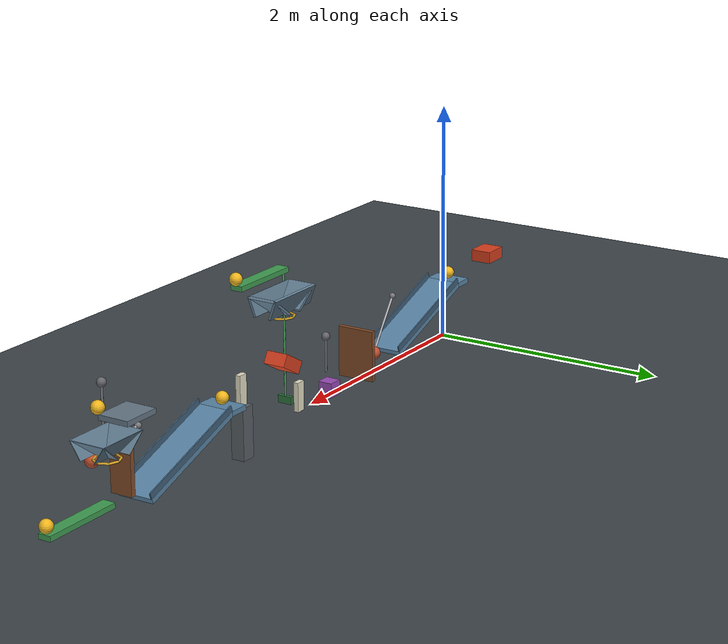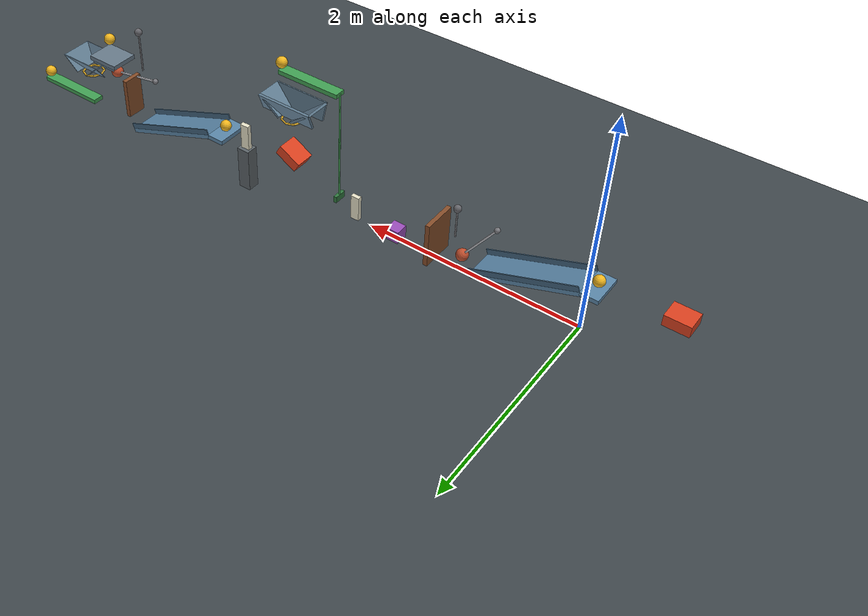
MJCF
<mujoco model="passive_chain_with_receiving_guides">
  <compiler angle="degree" autolimits="true"/>
  <option timestep="0.002" gravity="0 0 -9.81" integrator="implicitfast" cone="elliptic" iterations="150" o_solref="0.008 0.690107" o_solimp="0.95 0.95 0.001 0.5 2" o_friction="0.68 0.005 0.002">
    <flag override="enable"/>
  </option>
  <size nconmax="600" njmax="3000"/>
  <visual>
    <headlight ambient="0.45 0.45 0.45" diffuse="0.7 0.7 0.7" specular="0.15 0.15 0.15"/>
    <map znear="0.01" zfar="50"/>
  </visual>

  <!-- Unvalidated passive candidate: no motors, timed controls, or initial velocities. -->
  <!-- Sliding friction is 0.68. Six-dimensional contacts additionally enable rolling resistance. -->
  <!-- Restitution 0.05 is approximated by contact damping, not imposed as an exact impact law. -->
  <!-- Positive hinge rotation is clockwise when viewed along the listed hinge axis. -->
  <!-- Extra counterweights are separate named bodies coupled by ideal angular linkages. -->
  <!-- Passive assist springs are included on pendulum1, lever1, pendulum2, and seesaw1. -->
  <!-- The lever axle is diagonal in the horizontal plane to move ball2 clear of the beam. -->

  <worldbody>
    <light name="main_light" pos="3 -3 6" dir="0 0 -1"/>
    <camera name="overview" pos="3 -7 4" xyaxes="1 0 0 0 0.45 0.893"/>
    <geom name="floor" type="plane" size="10 5 0.1" condim="6" friction="0.68 0.005 0.002" rgba="0.24 0.27 0.29 1"/>

    <!-- Initial cart front to ball surface separation is 0.50 m. -->
    <body name="cart1" pos="-0.74 0 0.542020">
      <joint name="cart1_slide" type="slide" axis="1 0 0" range="0 0.65" damping="0.20" solreflimit="0.004 1"/>
      <geom name="cart1_box" type="box" size="0.11 0.09 0.05" mass="0.50" condim="6" friction="0.68 0.005 0.002" rgba="0.85 0.25 0.12 1"/>
    </body>

    <body name="ball1" pos="-0.08 0 0.542020">
      <freejoint name="ball1_free"/>
      <geom name="ball1_sphere" type="sphere" size="0.05" mass="0.20" condim="6" friction="0.68 0.005 0.002" rgba="0.95 0.72 0.12 1"/>
    </body>

    <!-- Deck upper surface: high end (0,0,0.492020), low end (0.939693,0,0.15). -->
    <body name="ramp1" pos="0 0 0">
      <geom name="ramp1_deck" type="box" pos="0.463006 0 0.302216" euler="0 20 0" size="0.50 0.15 0.02" condim="6" friction="0.68 0.005 0.002" rgba="0.35 0.52 0.65 1"/>
      <geom name="ramp1_start_platform" type="box" pos="-0.08 0 0.472020" size="0.08 0.15 0.02" condim="6" friction="0.68 0.005 0.002" rgba="0.35 0.52 0.65 1"/>
      <geom name="ramp1_rail_left" type="box" pos="0.478397 -0.145 0.344502" euler="0 20 0" size="0.50 0.005 0.025" condim="6" friction="0.68 0.005 0.002" rgba="0.25 0.38 0.48 1"/>
      <geom name="ramp1_rail_right" type="box" pos="0.478397 0.145 0.344502" euler="0 20 0" size="0.50 0.005 0.025" condim="6" friction="0.68 0.005 0.002" rgba="0.25 0.38 0.48 1"/>
    </body>

    <!-- Initial bob center is approximately (1.094693,0,0.16). -->
    <!-- Initial rod inclination is 35 degrees; additional travel is limited to 40 degrees. -->
    <!-- Total rigid-body mass is 0.35 kg, including the pivot hub. -->
    <body name="pendulum1" pos="0.807905 0 0.569576" euler="0 -35 0">
      <joint name="pendulum1_hinge" type="hinge" axis="0 -1 0" range="0 40" damping="0.04" stiffness="0.01" springref="800" solreflimit="0.004 1"/>
      <geom name="pendulum1_hub" type="sphere" size="0.025" mass="0.299" condim="6" friction="0.68 0.005 0.002" rgba="0.48 0.48 0.50 1"/>
      <geom name="pendulum1_rod" type="capsule" fromto="0 0 0 0 0 -0.50" size="0.009" mass="0.001" condim="6" friction="0.68 0.005 0.002" rgba="0.70 0.70 0.72 1"/>
      <geom name="pendulum1_bob" type="sphere" pos="0 0 -0.50" size="0.055" mass="0.050" condim="6" friction="0.68 0.005 0.002" rgba="0.76 0.31 0.18 1"/>
    </body>

    <body name="door1" pos="1.345 0 0.02">
      <joint name="door1_hinge" type="hinge" axis="0 1 0" range="0 70" damping="0.04" solreflimit="0.004 1"/>
      <geom name="door1_panel" type="box" pos="0 0 0.21" size="0.02 0.16 0.21" mass="0.45" condim="6" friction="0.68 0.005 0.002" rgba="0.52 0.30 0.16 1"/>
    </body>

    <!-- Separate upright counterweight adds gravitational energy after the door is tipped. -->
    <body name="door1_counterweight" pos="1.345 -0.30 0.02">
      <joint name="door1_counterweight_hinge" type="hinge" axis="0 1 0" range="0 70" damping="0.04" solreflimit="0.004 1"/>
      <geom name="door1_counterweight_rod" type="capsule" fromto="0 0 0 0 0 0.30" size="0.008" mass="0.001" condim="6" friction="0.68 0.005 0.002" rgba="0.48 0.48 0.50 1"/>
      <geom name="door1_counterweight_mass" type="sphere" pos="0 0 0.30" size="0.035" mass="0.349" condim="6" friction="0.68 0.005 0.002" rgba="0.40 0.40 0.42 1"/>
    </body>

    <body name="block1" pos="1.745 0 0.060">
      <freejoint name="block1_free"/>
      <geom name="block1_cube" type="box" size="0.06 0.06 0.06" mass="0.35" condim="6" friction="0.68 0.005 0.002" rgba="0.60 0.30 0.72 1"/>
    </body>

    <!-- Block right face reaches domino left face after a 0.32 m translation. -->
    <body name="domino1" pos="2.165 0 0.120">
      <freejoint name="domino1_free"/>
      <geom name="domino1_box" type="box" size="0.04 0.02 0.12" mass="0.25" condim="6" friction="0.68 0.005 0.002" rgba="0.90 0.88 0.78 1"/>
    </body>

    <!-- Beam has the specified mass and dimensions; its low rigid striker is idealized as massless. -->
    <!-- The striker center is initially 0.18 m beyond domino1's center. -->
    <!-- Initial assist torque is below ball2's opposing gravity torque. -->
    <body name="lever1" pos="2.645 0 1.20">
      <inertial pos="0 0 0" mass="0.50" diaginertia="0.000483333 0.015066667 0.015416667"/>
      <joint name="lever1_hinge" type="hinge" axis="-0.6 -0.8 0" range="0 45" damping="0.04" stiffness="0.064" springref="420" solreflimit="0.004 1"/>
      <geom name="lever1_beam" type="box" size="0.30 0.05 0.02" condim="6" friction="0.68 0.005 0.002" rgba="0.25 0.62 0.32 1"/>
      <geom name="lever1_striker_stem" type="capsule" fromto="-0.30 0 0 -0.30 0 -1.02" size="0.008" condim="6" friction="0.68 0.005 0.002" rgba="0.25 0.62 0.32 1"/>
      <geom name="lever1_striker_pad" type="box" pos="-0.30 0 -1.05" size="0.015 0.06 0.03" condim="6" friction="0.68 0.005 0.002" rgba="0.18 0.46 0.24 1"/>
    </body>

    <body name="ball2" pos="2.945 0 1.270">
      <freejoint name="ball2_free"/>
      <geom name="ball2_sphere" type="sphere" size="0.05" mass="0.20" condim="6" friction="0.68 0.005 0.002" rgba="0.95 0.72 0.12 1"/>
    </body>

    <!-- Receiving guide is offset from the lever's plane and feeds a 0.11 m square throat. -->
    <!-- Guide surface heights run from z=1.15 at the mouth to z=1.00 at the throat. -->
    <body name="ball2_receiving_guide" pos="2.665 0.21 0">
      <geom name="ball2_receiving_guide_xplus" type="box" pos="0.158597 0 1.067074" euler="0 -37.5686 0" size="0.123009 0.115 0.01" condim="6" friction="0.68 0.005 0.002" rgba="0.38 0.49 0.57 1"/>
      <geom name="ball2_receiving_guide_xminus" type="box" pos="-0.158597 0 1.067074" euler="0 37.5686 0" size="0.123009 0.115 0.01" condim="6" friction="0.68 0.005 0.002" rgba="0.38 0.49 0.57 1"/>
      <geom name="ball2_receiving_guide_yplus" type="box" pos="0 0.091889 1.071557" euler="69.8637 0 0" size="0.255 0.079883 0.01" condim="6" friction="0.68 0.005 0.002" rgba="0.38 0.49 0.57 1"/>
      <geom name="ball2_receiving_guide_yminus" type="box" pos="0 -0.091889 1.071557" euler="-69.8637 0 0" size="0.255 0.079883 0.01" condim="6" friction="0.68 0.005 0.002" rgba="0.38 0.49 0.57 1"/>
    </body>

    <!-- Minimum clear ring diameter is 0.16 m. -->
    <!-- Ring plane is 0.32 m below ball2's initial center. -->
    <body name="ring1" pos="2.665 0.21 0.950">
      <geom name="ring1_segment01" type="capsule" fromto="0.095250 0 0 0.067352 0.067352 0" size="0.008" condim="6" friction="0.68 0.005 0.002" rgba="0.88 0.68 0.15 1"/>
      <geom name="ring1_segment02" type="capsule" fromto="0.067352 0.067352 0 0 0.095250 0" size="0.008" condim="6" friction="0.68 0.005 0.002" rgba="0.88 0.68 0.15 1"/>
      <geom name="ring1_segment03" type="capsule" fromto="0 0.095250 0 -0.067352 0.067352 0" size="0.008" condim="6" friction="0.68 0.005 0.002" rgba="0.88 0.68 0.15 1"/>
      <geom name="ring1_segment04" type="capsule" fromto="-0.067352 0.067352 0 -0.095250 0 0" size="0.008" condim="6" friction="0.68 0.005 0.002" rgba="0.88 0.68 0.15 1"/>
      <geom name="ring1_segment05" type="capsule" fromto="-0.095250 0 0 -0.067352 -0.067352 0" size="0.008" condim="6" friction="0.68 0.005 0.002" rgba="0.88 0.68 0.15 1"/>
      <geom name="ring1_segment06" type="capsule" fromto="-0.067352 -0.067352 0 0 -0.095250 0" size="0.008" condim="6" friction="0.68 0.005 0.002" rgba="0.88 0.68 0.15 1"/>
      <geom name="ring1_segment07" type="capsule" fromto="0 -0.095250 0 0.067352 -0.067352 0" size="0.008" condim="6" friction="0.68 0.005 0.002" rgba="0.88 0.68 0.15 1"/>
      <geom name="ring1_segment08" type="capsule" fromto="0.067352 -0.067352 0 0.095250 0 0" size="0.008" condim="6" friction="0.68 0.005 0.002" rgba="0.88 0.68 0.15 1"/>
    </body>

    <!-- At x=2.665, sphere-center contact height is z=0.70, 0.25 m below ring1. -->
    <body name="cart2" pos="2.665 0.21 0.584530">
      <joint name="cart2_slide" type="slide" axis="1 0 0" range="0 0.58" damping="0.20" solreflimit="0.004 1"/>
      <geom name="cart2_box" type="box" euler="0 -30 0" size="0.11 0.09 0.05" mass="0.50" condim="6" friction="0.68 0.005 0.002" rgba="0.85 0.25 0.12 1"/>
    </body>

    <body name="domino2_base" pos="3.194217 0.21 0.205">
      <geom name="domino2_base_box" type="box" size="0.060 0.055 0.205" condim="6" friction="0.68 0.005 0.002" rgba="0.35 0.38 0.40 1"/>
    </body>

    <body name="domino2" pos="3.194217 0.21 0.530">
      <freejoint name="domino2_free"/>
      <geom name="domino2_box" type="box" size="0.04 0.02 0.12" mass="0.25" condim="6" friction="0.68 0.005 0.002" rgba="0.90 0.88 0.78 1"/>
    </body>

    <body name="ball3" pos="3.424217 0.21 0.542020">
      <freejoint name="ball3_free"/>
      <geom name="ball3_sphere" type="sphere" size="0.05" mass="0.20" condim="6" friction="0.68 0.005 0.002" rgba="0.95 0.72 0.12 1"/>
    </body>

    <!-- Ramp2 upper surface high end is at x=3.504217; low end is at x=4.443910. -->
    <body name="ramp2" pos="0 0 0">
      <geom name="ramp2_deck" type="box" pos="3.967223 0.21 0.302216" euler="0 20 0" size="0.50 0.15 0.02" condim="6" friction="0.68 0.005 0.002" rgba="0.35 0.52 0.65 1"/>
      <geom name="ramp2_start_platform" type="box" pos="3.424217 0.21 0.472020" size="0.08 0.15 0.02" condim="6" friction="0.68 0.005 0.002" rgba="0.35 0.52 0.65 1"/>
      <geom name="ramp2_rail_left" type="box" pos="3.982614 0.065 0.344502" euler="0 20 0" size="0.50 0.005 0.025" condim="6" friction="0.68 0.005 0.002" rgba="0.25 0.38 0.48 1"/>
      <geom name="ramp2_rail_right" type="box" pos="3.982614 0.355 0.344502" euler="0 20 0" size="0.50 0.005 0.025" condim="6" friction="0.68 0.005 0.002" rgba="0.25 0.38 0.48 1"/>
    </body>

    <!-- Flap near face is 0.10 m beyond ramp2's low edge. -->
    <body name="flap1" pos="4.563910 0.21 0.58">
      <joint name="flap1_hinge" type="hinge" axis="0 -1 0" range="0 60" damping="0.04" solreflimit="0.004 1"/>
      <geom name="flap1_panel" type="box" pos="0 0 -0.19" size="0.02 0.09 0.19" mass="0.28" condim="6" friction="0.68 0.005 0.002" rgba="0.52 0.30 0.16 1"/>
    </body>

    <!-- Separate counterweight starts upright and falls left as flap1 rises right. -->
    <body name="flap1_counterweight" pos="4.563910 0.06 0.58">
      <joint name="flap1_counterweight_hinge" type="hinge" axis="0 -1 0" range="0 60" damping="0.04" solreflimit="0.004 1"/>
      <geom name="flap1_counterweight_rod" type="capsule" fromto="0 0 0 0 0 0.40" size="0.008" mass="0.001" condim="6" friction="0.68 0.005 0.002" rgba="0.48 0.48 0.50 1"/>
      <geom name="flap1_counterweight_mass" type="sphere" pos="0 0 0.40" size="0.035" mass="0.599" condim="6" friction="0.68 0.005 0.002" rgba="0.40 0.40 0.42 1"/>
    </body>

    <!-- Initial bob center is approximately (4.803910,0.155,0.52). -->
    <!-- Its y position clears the shelf edge throughout the swing. -->
    <!-- Initial rod inclination is 80 degrees; additional travel is 38 degrees. -->
    <body name="pendulum2" pos="4.311506 0.155 0.606824" euler="0 -80 0">
      <joint name="pendulum2_hinge" type="hinge" axis="0 -1 0" range="0 38" damping="0.04" stiffness="0.01" springref="1395" solreflimit="0.004 1"/>
      <geom name="pendulum2_hub" type="sphere" size="0.025" mass="0.299" condim="6" friction="0.68 0.005 0.002" rgba="0.48 0.48 0.50 1"/>
      <geom name="pendulum2_rod" type="capsule" fromto="0 0 0 0 0 -0.50" size="0.009" mass="0.001" condim="6" friction="0.68 0.005 0.002" rgba="0.70 0.70 0.72 1"/>
      <geom name="pendulum2_bob" type="sphere" pos="0 0 -0.50" size="0.055" mass="0.050" condim="6" friction="0.68 0.005 0.002" rgba="0.76 0.31 0.18 1"/>
    </body>

    <!-- Shelf top is z=0.85; ball4 rests at its outer corner. -->
    <body name="shelf1" pos="4.638910 0.335 0.83">
      <geom name="shelf1_panel" type="box" size="0.15 0.125 0.02" condim="6" friction="0.68 0.005 0.002" rgba="0.40 0.47 0.53 1"/>
    </body>

    <body name="ball4" pos="4.788910 0.21 0.900">
      <freejoint name="ball4_free"/>
      <geom name="ball4_sphere" type="sphere" size="0.05" mass="0.20" condim="6" friction="0.68 0.005 0.002" rgba="0.95 0.72 0.12 1"/>
    </body>

    <!-- Receiving guide lies below the shelf and outside the pendulum's y envelope. -->
    <!-- Surface heights run from z=0.77 at the mouth to z=0.64 at the throat. -->
    <body name="ball4_receiving_guide" pos="4.888910 0.36 0">
      <geom name="ball4_receiving_guide_xplus" type="box" pos="0.128835 0 0.703511" euler="0 -41.8779 0" size="0.097372 0.145 0.002" condim="6" friction="0.68 0.005 0.002" rgba="0.38 0.49 0.57 1"/>
      <geom name="ball4_receiving_guide_xminus" type="box" pos="-0.128835 0 0.703511" euler="0 41.8779 0" size="0.097372 0.145 0.002" condim="6" friction="0.68 0.005 0.002" rgba="0.38 0.49 0.57 1"/>
      <geom name="ball4_receiving_guide_yplus" type="box" pos="0 0.099174 0.703906" euler="56.8215 0 0" size="0.205 0.077661 0.002" condim="6" friction="0.68 0.005 0.002" rgba="0.38 0.49 0.57 1"/>
      <geom name="ball4_receiving_guide_yminus" type="box" pos="0 -0.099174 0.703906" euler="-56.8215 0 0" size="0.205 0.077661 0.002" condim="6" friction="0.68 0.005 0.002" rgba="0.38 0.49 0.57 1"/>
    </body>

    <!-- Ring plane is 0.30 m below ball4's initial center. -->
    <body name="ring2" pos="4.888910 0.36 0.600">
      <geom name="ring2_segment01" type="capsule" fromto="0.095250 0 0 0.067352 0.067352 0" size="0.008" condim="6" friction="0.68 0.005 0.002" rgba="0.88 0.68 0.15 1"/>
      <geom name="ring2_segment02" type="capsule" fromto="0.067352 0.067352 0 0 0.095250 0" size="0.008" condim="6" friction="0.68 0.005 0.002" rgba="0.88 0.68 0.15 1"/>
      <geom name="ring2_segment03" type="capsule" fromto="0 0.095250 0 -0.067352 0.067352 0" size="0.008" condim="6" friction="0.68 0.005 0.002" rgba="0.88 0.68 0.15 1"/>
      <geom name="ring2_segment04" type="capsule" fromto="-0.067352 0.067352 0 -0.095250 0 0" size="0.008" condim="6" friction="0.68 0.005 0.002" rgba="0.88 0.68 0.15 1"/>
      <geom name="ring2_segment05" type="capsule" fromto="-0.095250 0 0 -0.067352 -0.067352 0" size="0.008" condim="6" friction="0.68 0.005 0.002" rgba="0.88 0.68 0.15 1"/>
      <geom name="ring2_segment06" type="capsule" fromto="-0.067352 -0.067352 0 0 -0.095250 0" size="0.008" condim="6" friction="0.68 0.005 0.002" rgba="0.88 0.68 0.15 1"/>
      <geom name="ring2_segment07" type="capsule" fromto="0 -0.095250 0 0.067352 -0.067352 0" size="0.008" condim="6" friction="0.68 0.005 0.002" rgba="0.88 0.68 0.15 1"/>
      <geom name="ring2_segment08" type="capsule" fromto="0.067352 -0.067352 0 0.095250 0 0" size="0.008" condim="6" friction="0.68 0.005 0.002" rgba="0.88 0.68 0.15 1"/>
    </body>

    <!-- Ball-center contact height is z=0.35, 0.25 m below ring2. -->
    <body name="seesaw1" pos="5.213910 0.36 0.28">
      <joint name="seesaw1_hinge" type="hinge" axis="0 -1 0" range="0 42" damping="0.04" stiffness="0.08" springref="420" solreflimit="0.004 1"/>
      <geom name="seesaw1_beam" type="box" size="0.325 0.05 0.02" mass="0.55" condim="6" friction="0.68 0.005 0.002" rgba="0.25 0.62 0.32 1"/>
    </body>

    <body name="ball5" pos="5.513910 0.36 0.350">
      <freejoint name="ball5_free"/>
      <geom name="ball5_sphere" type="sphere" size="0.05" mass="0.20" condim="6" friction="0.68 0.005 0.002" rgba="0.95 0.72 0.12 1"/>
    </body>
  </worldbody>

  <!-- Ideal passive angular linkages transfer counterweight gravity to the panels. -->
  <equality>
    <joint name="door1_counterweight_link" joint1="door1_hinge" joint2="door1_counterweight_hinge" polycoef="0 1 0 0 0" solref="0.004 1" solimp="0.99 0.99 0.001"/>
    <joint name="flap1_counterweight_link" joint1="flap1_hinge" joint2="flap1_counterweight_hinge" polycoef="0 1 0 0 0" solref="0.004 1" solimp="0.99 0.99 0.001"/>
  </equality>

  <!-- Compression-only axial spring is compressed by 0.20 m initially. -->
  <!-- After that extension, the tendon enters its zero-force spring-length interval. -->
  <tendon>
    <fixed name="cart1_axial_spring" stiffness="18" damping="0" springlength="0.20 10">
      <joint joint="cart1_slide" coef="1"/>
    </fixed>
  </tendon>

  <keyframe>
    <key name="start"/>
  </keyframe>
</mujoco>
